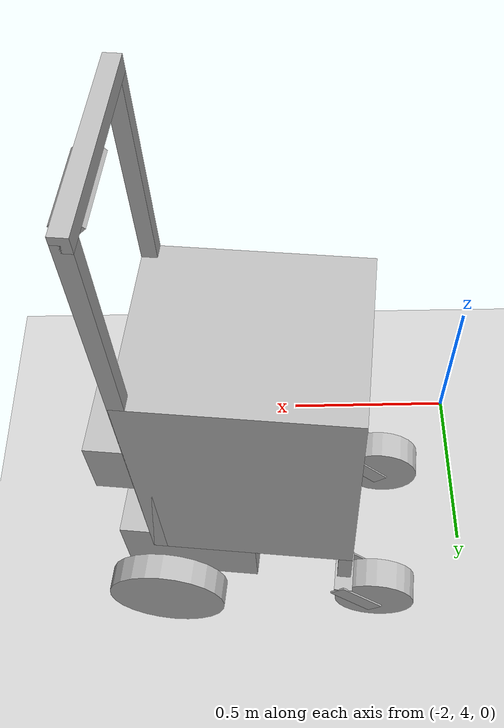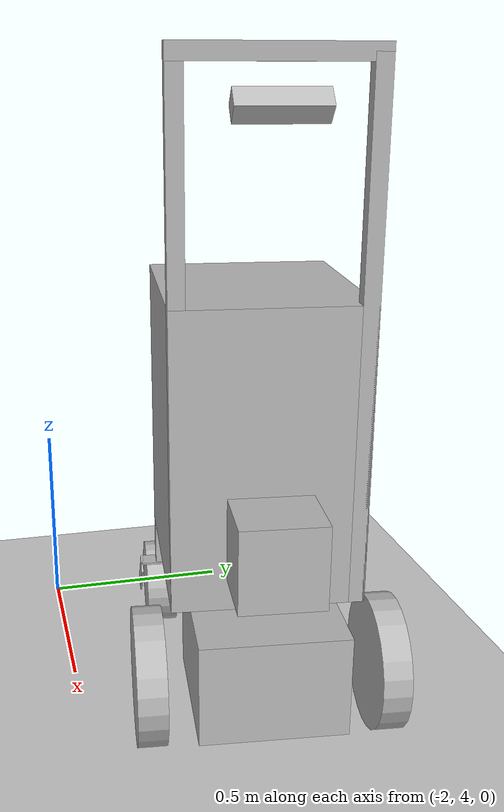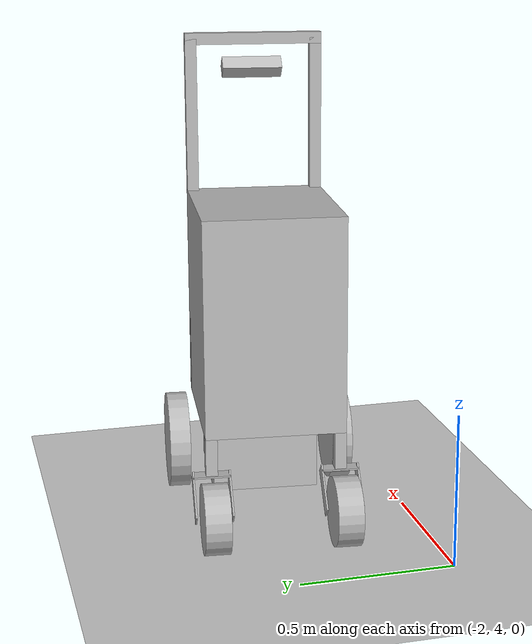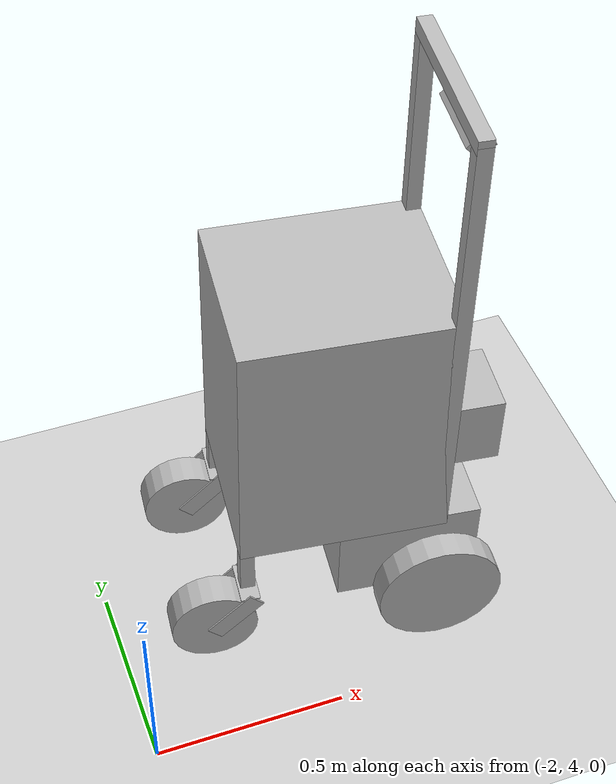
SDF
<sdf version="1.5">
 <world name="default">
  <light name="sun" type="directional">
   <pose>0 0 10 0 -0 0</pose>
   <diffuse>0.8 0.8 0.8 1</diffuse>
   <specular>0.2 0.2 0.2 1</specular>
   <attenuation>
    <range>1000</range>
    <constant>0.9</constant>
    <linear>0.01</linear>
    <quadratic>0.001</quadratic>
   </attenuation>
   <direction>-0.5 0.1 -0.9</direction>
  </light>
  <model name="ground_plane">
   <static>1</static>
   <link name="link">
    <collision name="collision">
     <geometry><plane><normal>0 0 1</normal><size>100 100</size></plane></geometry>
     <surface><friction><ode><mu>100</mu><mu2>50</mu2></ode></friction></surface>
    </collision>
    <visual name="visual">
     <cast_shadows>0</cast_shadows>
     <geometry><plane><normal>0 0 1</normal><size>100 100</size></plane></geometry>
     <material>
      <script><uri>file://media/materials/scripts/gazebo.material</uri><name>Gazebo/Grey</name></script>
     </material>
    </visual>
   </link>
  </model>
  <physics name="default_physics" default="0" type="ode">
   <max_step_size>0.001</max_step_size>
   <real_time_factor>1</real_time_factor>
   <real_time_update_rate>1000</real_time_update_rate>
   <gravity>0 0 -9.8</gravity>
   <magnetic_field>5.5645e-06 2.28758e-05 -4.23884e-05</magnetic_field>
  </physics>
  <scene><ambient>0.4 0.4 0.4 1</ambient><background>0.7 0.7 0.7 1</background><shadows>1</shadows></scene>
  <spherical_coordinates>
   <surface_model>EARTH_WGS84</surface_model>
   <latitude_deg>0</latitude_deg>
   <longitude_deg>0</longitude_deg>
   <elevation>0</elevation>
   <heading_deg>0</heading_deg>
  </spherical_coordinates>
  <model name="cwruBot">
   <link name="base_link">
    <inertial>
     <pose>-0.00487564 0 0.0342128 0 -0 0</pose>
     <mass>166.85</mass>
     <inertia>
      <ixx>11.178</ixx>
      <ixy>-0.0037199</ixy>
      <ixz>1.44718</ixz>
      <iyy>11.5185</iyy>
      <iyz>-0.0013</iyz>
      <izz>4.4627</izz>
     </inertia>
    </inertial>
    <collision name="base_link_collision">
     <pose>-0.2445 0 0.7366 0 -0 0</pose>
     <geometry><box><size>0.5461 0.4572 0.7112</size></box></geometry>
    </collision>
    <collision name="base_link_collision_base_link_1">
     <pose>-0.05 0 0.22 0 -0 0</pose>
     <geometry><box><size>0.381 0.3556 0.254</size></box></geometry>
    </collision>
    <collision name="base_link_collision_base_link_2">
     <pose>-0.4985 0.20955 0.3185 0 -0 0</pose>
     <geometry><box><size>0.0381 0.0381 0.125</size></box></geometry>
    </collision>
    <collision name="base_link_collision_base_link_3">
     <pose>-0.4985 -0.20955 0.3185 0 -0 0</pose>
     <geometry><box><size>0.0381 0.0381 0.125</size></box></geometry>
    </collision>
    <collision name="base_link_collision_base_link_4">
     <pose>0.05 0 1.5 0 0.785 0</pose>
     <geometry><box><size>0.05 0.2 0.05</size></box></geometry>
    </collision>
    <collision name="base_link_collision_base_link_5">
     <pose>0.1 0 0.56 0 -0 0</pose>
     <geometry><box><size>0.2 0.2 0.2</size></box></geometry>
    </collision>
    <collision name="base_link_collision_base_link_6">
     <pose>0.0095 0.20955 0.9906 0 -0 0</pose>
     <geometry><box><size>0.0381 0.0381 1.2192</size></box></geometry>
    </collision>
    <collision name="base_link_collision_base_link_7">
     <pose>0.0095 -0.20955 0.9906 0 -0 0</pose>
     <geometry><box><size>0.0381 0.0381 1.2192</size></box></geometry>
    </collision>
    <collision name="base_link_collision_base_link_8">
     <pose>0.0095 0 1.6002 0 -0 0</pose>
     <geometry><box><size>0.0381 0.4572 0.0381</size></box></geometry>
    </collision>
    <visual name="base_link_visual">
     <pose>-0.2445 0 0.7366 0 -0 0</pose>
     <geometry><box><size>0.5461 0.4572 0.7112</size></box></geometry>
    </visual>
    <visual name="base_link_visual_base_link_1">
     <pose>-0.05 0 0.22 0 -0 0</pose>
     <geometry><box><size>0.381 0.3556 0.254</size></box></geometry>
    </visual>
    <visual name="base_link_visual_base_link_2">
     <pose>-0.4985 0.20955 0.3185 0 -0 0</pose>
     <geometry><box><size>0.0381 0.0381 0.125</size></box></geometry>
    </visual>
    <visual name="base_link_visual_base_link_3">
     <pose>-0.4985 -0.20955 0.3185 0 -0 0</pose>
     <geometry><box><size>0.0381 0.0381 0.125</size></box></geometry>
    </visual>
    <visual name="base_link_visual_base_link_4">
     <pose>0.05 0 1.5 0 0.785 0</pose>
     <geometry><box><size>0.05 0.2 0.05</size></box></geometry>
    </visual>
    <visual name="base_link_visual_base_link_5">
     <pose>0.1 0 0.56 0 -0 0</pose>
     <geometry><box><size>0.2 0.2 0.2</size></box></geometry>
    </visual>
    <visual name="base_link_visual_base_link_6">
     <pose>0.0095 0.20955 0.9906 0 -0 0</pose>
     <geometry><box><size>0.0381 0.0381 1.2192</size></box></geometry>
    </visual>
    <visual name="base_link_visual_base_link_7">
     <pose>0.0095 -0.20955 0.9906 0 -0 0</pose>
     <geometry><box><size>0.0381 0.0381 1.2192</size></box></geometry>
    </visual>
    <visual name="base_link_visual_base_link_8">
     <pose>0.0095 0 1.6002 0 -0 0</pose>
     <geometry><box><size>0.0381 0.4572 0.0381</size></box></geometry>
    </visual>
    <sensor name="openni_camera_camera" type="depth">
     <always_on>1</always_on>
     <visualize>1</visualize>
     <camera name="__default__">
      <horizontal_fov>1.047</horizontal_fov>
      <image><width>640</width><height>480</height><format>R8G8B8</format></image>
      <depth_camera><output>depths</output></depth_camera>
      <clip><near>0.1</near><far>100</far></clip>
     </camera>
     <plugin name="camera_controller" filename="libgazebo_ros_openni_kinect.so">
      <alwaysOn>true</alwaysOn>
      <updateRate>10.0</updateRate>
      <cameraName>kinect</cameraName>
      <frameName>kinect_pc_frame</frameName>
      <imageTopicName>rgb/image_raw</imageTopicName>
      <depthImageTopicName>depth/image_raw</depthImageTopicName>
      <pointCloudTopicName>depth/points</pointCloudTopicName>
      <cameraInfoTopicName>rgb/camera_info</cameraInfoTopicName>
      <depthImageCameraInfoTopicName>depth/camera_info</depthImageCameraInfoTopicName>
      <pointCloudCutoff>0.4</pointCloudCutoff>
      <hackBaseline>0.07</hackBaseline>
      <distortionK1>0.0</distortionK1>
      <distortionK2>0.0</distortionK2>
      <distortionK3>0.0</distortionK3>
      <distortionT1>0.0</distortionT1>
      <distortionT2>0.0</distortionT2>
      <CxPrime>0.0</CxPrime>
      <Cx>0.0</Cx>
      <Cy>0.0</Cy>
      <focalLength>0.0</focalLength>
      <robotNamespace>/</robotNamespace>
     </plugin>
     <pose>0.05 0 1.5 0 0.785 0</pose>
    </sensor>
    <sensor name="sick_lidar_sensor" type="gpu_ray">
     <visualize>0</visualize>
     <update_rate>40</update_rate>
     <ray>
      <scan>
       <horizontal>
        <samples>181</samples>
        <resolution>1</resolution>
        <min_angle>-1.5708</min_angle>
        <max_angle>1.5708</max_angle>
       </horizontal>
      </scan>
      <range><min>0.1</min><max>80</max><resolution>0.01</resolution></range>
      <noise><type>gaussian</type><mean>0</mean><stddev>0.01</stddev></noise>
     </ray>
     <plugin name="gazebo_ros_lidar_controller" filename="libgazebo_ros_gpu_laser.so">
      <topicName>/laser/scan</topicName>
      <frameName>lidar_link</frameName>
      <robotNamespace>/</robotNamespace>
     </plugin>
     <pose>0.1 0 0.56 0 -0 0</pose>
    </sensor>
   </link>
   <link name="brackettop_left">
    <pose>-0.4985 0.20955 0.256 0 -0 1.5708</pose>
    <inertial>
     <pose>0 0.0266667 -0.04 0 -0 0</pose>
     <mass>3</mass>
     <inertia>
      <ixx>0.0334667</ixx>
      <ixy>0.003</ixy>
      <ixz>0.003</ixz>
      <iyy>0.0393031</iyy>
      <iyz>0.0046</iyz>
      <izz>0.0379698</izz>
     </inertia>
    </inertial>
    <collision name="brackettop_left_collision">
     <geometry><box><size>0.1175 0.0508 0.005</size></box></geometry>
    </collision>
    <collision name="brackettop_left_collision_brackettop_left_1">
     <pose>0.05875 0.04 -0.06 1.5708 -0.7854 1.5708</pose>
     <geometry><box><size>0.0508 0.16 0.005</size></box></geometry>
    </collision>
    <collision name="brackettop_left_collision_brackettop_left_2">
     <pose>-0.05875 0.04 -0.06 1.5708 -0.7854 1.5708</pose>
     <geometry><box><size>0.0508 0.16 0.005</size></box></geometry>
    </collision>
    <visual name="brackettop_left_visual">
     <geometry><box><size>0.1175 0.0508 0.005</size></box></geometry>
    </visual>
    <visual name="brackettop_left_visual_brackettop_left_1">
     <pose>0.05875 0.04 -0.06 1.5708 -0.7854 1.5708</pose>
     <geometry><box><size>0.0508 0.16 0.005</size></box></geometry>
    </visual>
    <visual name="brackettop_left_visual_brackettop_left_2">
     <pose>-0.05875 0.04 -0.06 1.5708 -0.7854 1.5708</pose>
     <geometry><box><size>0.0508 0.16 0.005</size></box></geometry>
    </visual>
   </link>
   <joint name="cast2bracket_left" type="revolute">
    <child>brackettop_left</child>
    <parent>base_link</parent>
    <axis>
     <xyz>0 0 1</xyz>
     <limit><lower>-1e+16</lower><upper>1e+16</upper></limit>
     <dynamics><spring_reference>0</spring_reference><spring_stiffness>0</spring_stiffness></dynamics>
     <use_parent_model_frame>1</use_parent_model_frame>
    </axis>
   </joint>
   <link name="left_casterwheel">
    <pose>-0.5915 0.207 0.143 -3.14158 1.57079 -1.57078</pose>
    <inertial>
     <mass>1</mass>
     <inertia>
      <ixx>0.01</ixx>
      <ixy>0.001</ixy>
      <ixz>0.001</ixz>
      <iyy>0.01</iyy>
      <iyz>0.001</iyz>
      <izz>0.01</izz>
     </inertia>
    </inertial>
    <collision name="left_casterwheel_collision">
     <geometry><cylinder><length>0.0826</length><radius>0.1143</radius></cylinder></geometry>
    </collision>
    <visual name="left_casterwheel_visual">
     <geometry><cylinder><length>0.0826</length><radius>0.1143</radius></cylinder></geometry>
    </visual>
   </link>
   <joint name="left_caster_joint" type="revolute">
    <child>left_casterwheel</child>
    <parent>brackettop_left</parent>
    <axis>
     <xyz>0 1 0</xyz>
     <limit><lower>-1e+16</lower><upper>1e+16</upper></limit>
     <dynamics><spring_reference>0</spring_reference><spring_stiffness>0</spring_stiffness></dynamics>
     <use_parent_model_frame>1</use_parent_model_frame>
    </axis>
   </joint>
   <link name="brackettop_right">
    <pose>-0.4985 -0.20955 0.256 0 -0 1.5708</pose>
    <inertial>
     <pose>0 0.0266667 -0.04 0 -0 0</pose>
     <mass>3</mass>
     <inertia>
      <ixx>0.0334667</ixx>
      <ixy>0.003</ixy>
      <ixz>0.003</ixz>
      <iyy>0.0393031</iyy>
      <iyz>0.0046</iyz>
      <izz>0.0379698</izz>
     </inertia>
    </inertial>
    <collision name="brackettop_right_collision">
     <geometry><box><size>0.1175 0.0508 0.005</size></box></geometry>
    </collision>
    <collision name="brackettop_right_collision_brackettop_right_1">
     <pose>0.05875 0.04 -0.06 1.5708 -0.7854 1.5708</pose>
     <geometry><box><size>0.0508 0.16 0.005</size></box></geometry>
    </collision>
    <collision name="brackettop_right_collision_brackettop_right_2">
     <pose>-0.05875 0.04 -0.06 1.5708 -0.7854 1.5708</pose>
     <geometry><box><size>0.0508 0.16 0.005</size></box></geometry>
    </collision>
    <visual name="brackettop_right_visual">
     <geometry><box><size>0.1175 0.0508 0.005</size></box></geometry>
    </visual>
    <visual name="brackettop_right_visual_brackettop_right_1">
     <pose>0.05875 0.04 -0.06 1.5708 -0.7854 1.5708</pose>
     <geometry><box><size>0.0508 0.16 0.005</size></box></geometry>
    </visual>
    <visual name="brackettop_right_visual_brackettop_right_2">
     <pose>-0.05875 0.04 -0.06 1.5708 -0.7854 1.5708</pose>
     <geometry><box><size>0.0508 0.16 0.005</size></box></geometry>
    </visual>
   </link>
   <joint name="cast2bracket_right" type="revolute">
    <child>brackettop_right</child>
    <parent>base_link</parent>
    <axis>
     <xyz>0 0 1</xyz>
     <limit><lower>-1e+16</lower><upper>1e+16</upper></limit>
     <dynamics><spring_reference>0</spring_reference><spring_stiffness>0</spring_stiffness></dynamics>
     <use_parent_model_frame>1</use_parent_model_frame>
    </axis>
   </joint>
   <link name="right_casterwheel">
    <pose>-0.5915 -0.2121 0.143 -3.14158 1.57079 -1.57078</pose>
    <inertial>
     <mass>1</mass>
     <inertia>
      <ixx>0.01</ixx>
      <ixy>0.001</ixy>
      <ixz>0.001</ixz>
      <iyy>0.01</iyy>
      <iyz>0.001</iyz>
      <izz>0.01</izz>
     </inertia>
    </inertial>
    <collision name="right_casterwheel_collision">
     <geometry><cylinder><length>0.0826</length><radius>0.1143</radius></cylinder></geometry>
    </collision>
    <visual name="right_casterwheel_visual">
     <geometry><cylinder><length>0.0826</length><radius>0.1143</radius></cylinder></geometry>
    </visual>
   </link>
   <joint name="right_caster_joint" type="revolute">
    <child>right_casterwheel</child>
    <parent>brackettop_right</parent>
    <axis>
     <xyz>0 1 0</xyz>
     <limit><lower>-1e+16</lower><upper>1e+16</upper></limit>
     <dynamics><spring_reference>0</spring_reference><spring_stiffness>0</spring_stiffness></dynamics>
     <use_parent_model_frame>1</use_parent_model_frame>
    </axis>
   </joint>
   <link name="left_wheel">
    <pose>0 0.282575 0.2 -3.14158 1.57079 -1.57078</pose>
    <inertial>
     <mass>1</mass>
     <inertia>
      <ixx>0.01</ixx>
      <ixy>0.001</ixy>
      <ixz>0.001</ixz>
      <iyy>0.01</iyy>
      <iyz>0.001</iyz>
      <izz>0.01</izz>
     </inertia>
    </inertial>
    <collision name="left_wheel_collision">
     <geometry><cylinder><length>0.06985</length><radius>0.1651</radius></cylinder></geometry>
    </collision>
    <visual name="left_wheel_visual">
     <geometry><cylinder><length>0.06985</length><radius>0.1651</radius></cylinder></geometry>
    </visual>
   </link>
   <joint name="left_wheel_joint" type="revolute">
    <child>left_wheel</child>
    <parent>base_link</parent>
    <axis>
     <xyz>0 1 0</xyz>
     <limit><lower>-1e+16</lower><upper>1e+16</upper></limit>
     <dynamics><spring_reference>0</spring_reference><spring_stiffness>0</spring_stiffness></dynamics>
     <use_parent_model_frame>1</use_parent_model_frame>
    </axis>
   </joint>
   <link name="right_wheel">
    <pose>0 -0.282575 0.2 -3.14158 1.57079 -1.57078</pose>
    <inertial>
     <mass>1</mass>
     <inertia>
      <ixx>0.01</ixx>
      <ixy>0.001</ixy>
      <ixz>0.001</ixz>
      <iyy>0.01</iyy>
      <iyz>0.001</iyz>
      <izz>0.01</izz>
     </inertia>
    </inertial>
    <collision name="right_wheel_collision">
     <geometry><cylinder><length>0.06985</length><radius>0.1651</radius></cylinder></geometry>
    </collision>
    <visual name="right_wheel_visual">
     <geometry><cylinder><length>0.06985</length><radius>0.1651</radius></cylinder></geometry>
    </visual>
   </link>
   <joint name="right_wheel_joint" type="revolute">
    <child>right_wheel</child>
    <parent>base_link</parent>
    <axis>
     <xyz>0 1 0</xyz>
     <limit><lower>-1e+16</lower><upper>1e+16</upper></limit>
     <dynamics><spring_reference>0</spring_reference><spring_stiffness>0</spring_stiffness></dynamics>
     <use_parent_model_frame>1</use_parent_model_frame>
    </axis>
   </joint>
   <static>0</static>
   <plugin name="differential_drive_controller" filename="libgazebo_ros_diff_drive.so">
    <alwaysOn>true</alwaysOn>
    <updateRate>100</updateRate>
    <leftJoint>right_wheel_joint</leftJoint>
    <rightJoint>left_wheel_joint</rightJoint>
    <wheelSeparation>0.56515</wheelSeparation>
    <wheelDiameter>0.3302</wheelDiameter>
    <torque>200</torque>
    <commandTopic>cmd_vel</commandTopic>
    <odometryTopic>odom</odometryTopic>
    <odometryFrame>odom</odometryFrame>
    <robotBaseFrame>base_link</robotBaseFrame>
    <robotNamespace>/</robotNamespace>
   </plugin>
   <pose>-1.1508 4.42954 -0.034923 -1.3e-05 0.014275 -0.110632</pose>
  </model>
 </world>
</sdf>
